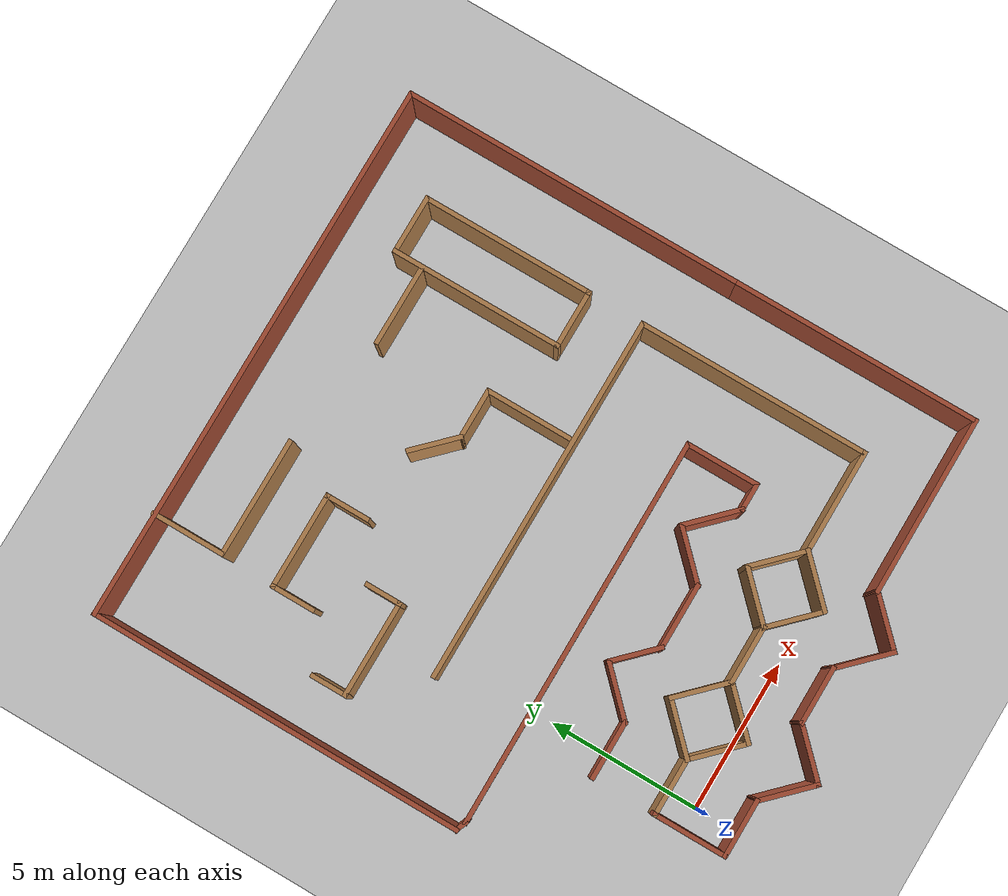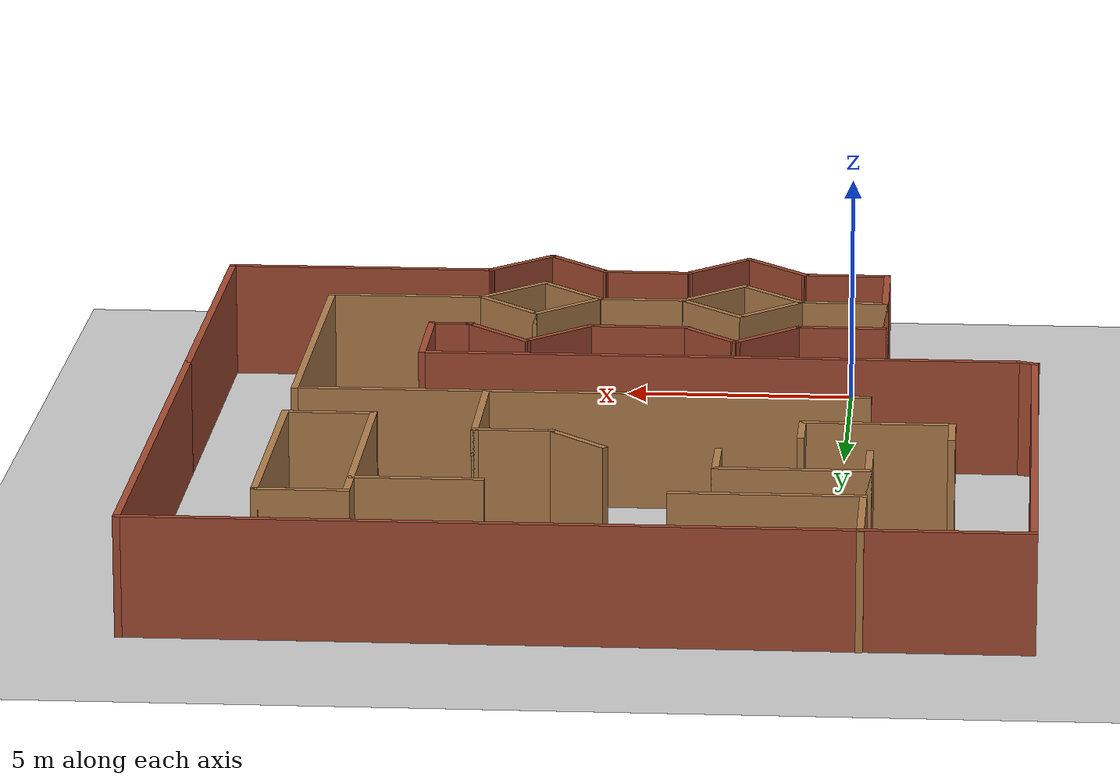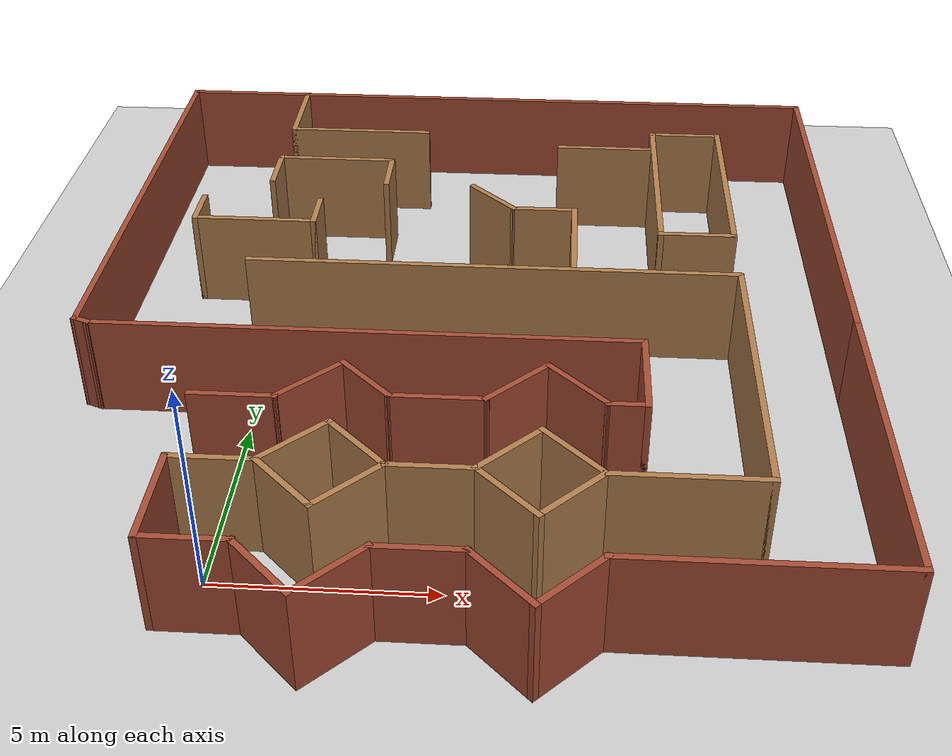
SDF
<sdf version="1.6">
 <world name="default">
  <light name="sun" type="directional">
   <pose>0 0 10 0 -0 0</pose>
   <diffuse>0.8 0.8 0.8 1</diffuse>
   <specular>0.2 0.2 0.2 1</specular>
   <attenuation>
    <range>1000</range>
    <constant>0.9</constant>
    <linear>0.01</linear>
    <quadratic>0.001</quadratic>
   </attenuation>
   <direction>-0.5 0.1 -0.9</direction>
  </light>
  <model name="ground_plane">
   <static>1</static>
   <link name="link">
    <collision name="collision">
     <geometry><plane><normal>0 0 1</normal><size>100 100</size></plane></geometry>
     <surface>
      <contact><collide_bitmask>65535</collide_bitmask></contact>
      <friction><ode><mu>100</mu><mu2>50</mu2></ode></friction>
     </surface>
    </collision>
    <visual name="visual">
     <cast_shadows>0</cast_shadows>
     <geometry><plane><normal>0 0 1</normal><size>100 100</size></plane></geometry>
     <material>
      <script><uri>file://media/materials/scripts/gazebo.material</uri><name>Gazebo/Grey</name></script>
     </material>
    </visual>
   </link>
  </model>
  <gravity>0 0 -9.8</gravity>
  <magnetic_field>6e-06 2.3e-05 -4.2e-05</magnetic_field>
  <atmosphere type="adiabatic"/>
  <physics name="default_physics" default="0" type="ode">
   <max_step_size>0.001</max_step_size>
   <real_time_factor>1</real_time_factor>
   <real_time_update_rate>1000</real_time_update_rate>
  </physics>
  <scene><ambient>0.4 0.4 0.4 1</ambient><background>0.7 0.7 0.7 1</background><shadows>1</shadows></scene>
  <audio><device>default</device></audio>
  <spherical_coordinates>
   <surface_model>EARTH_WGS84</surface_model>
   <latitude_deg>0</latitude_deg>
   <longitude_deg>0</longitude_deg>
   <elevation>0</elevation>
   <heading_deg>0</heading_deg>
  </spherical_coordinates>
  <model name="robot_house">
   <pose>4.96244 7.84434 0 0 -0 0</pose>
   <link name="Wall_0">
    <collision name="Wall_0_Collision">
     <geometry><box><size>2 0.15 2.5</size></box></geometry>
     <pose>0 0 1.25 0 -0 0</pose>
    </collision>
    <visual name="Wall_0_Visual">
     <pose>0 0 1.25 0 -0 0</pose>
     <geometry><box><size>2 0.15 2.5</size></box></geometry>
     <material>
      <script><uri>file://media/materials/scripts/gazebo.material</uri><name>Gazebo/Wood</name></script>
      <ambient>1 1 1 1</ambient>
     </material>
     <meta><layer>0</layer></meta>
    </visual>
    <pose>-4.79669 -6.72519 0 0 -0 0</pose>
   </link>
   <link name="Wall_1">
    <collision name="Wall_1_Collision">
     <geometry><box><size>2 0.15 2.5</size></box></geometry>
     <pose>0 0 1.25 0 -0 0</pose>
    </collision>
    <visual name="Wall_1_Visual">
     <pose>0 0 1.25 0 -0 0</pose>
     <geometry><box><size>2 0.15 2.5</size></box></geometry>
     <material>
      <script><uri>file://media/materials/scripts/gazebo.material</uri><name>Gazebo/Wood</name></script>
      <ambient>1 1 1 1</ambient>
     </material>
     <meta><layer>0</layer></meta>
    </visual>
    <pose>-3.21762 -6.07112 0 0 -0 0.785398</pose>
   </link>
   <link name="Wall_11">
    <collision name="Wall_11_Collision">
     <geometry><box><size>2 0.15 2.5</size></box></geometry>
     <pose>0 0 1.25 0 -0 0</pose>
    </collision>
    <visual name="Wall_11_Visual">
     <pose>0 0 1.25 0 -0 0</pose>
     <geometry><box><size>2 0.15 2.5</size></box></geometry>
     <material>
      <script><uri>file://media/materials/scripts/gazebo.material</uri><name>Gazebo/Wood</name></script>
      <ambient>1 1 1 1</ambient>
     </material>
     <meta><layer>0</layer></meta>
    </visual>
    <pose>-3.21762 -7.37927 0 0 -0 -0.785398</pose>
   </link>
   <link name="Wall_12">
    <collision name="Wall_12_Collision">
     <geometry><box><size>2 0.15 2.5</size></box></geometry>
     <pose>0 0 1.25 0 -0 0</pose>
    </collision>
    <visual name="Wall_12_Visual">
     <pose>0 0 1.25 0 -0 0</pose>
     <geometry><box><size>2 0.15 2.5</size></box></geometry>
     <material>
      <script><uri>file://media/materials/scripts/gazebo.material</uri><name>Gazebo/Wood</name></script>
      <ambient>1 1 1 1</ambient>
     </material>
     <meta><layer>0</layer></meta>
    </visual>
    <pose>-1.90947 -7.37927 0 0 -0 0.785398</pose>
   </link>
   <link name="Wall_14">
    <collision name="Wall_14_Collision">
     <geometry><box><size>2 0.15 2.5</size></box></geometry>
     <pose>0 0 1.25 0 -0 0</pose>
    </collision>
    <visual name="Wall_14_Visual">
     <pose>0 0 1.25 0 -0 0</pose>
     <geometry><box><size>2 0.15 2.5</size></box></geometry>
     <material>
      <script><uri>file://media/materials/scripts/gazebo.material</uri><name>Gazebo/Wood</name></script>
      <ambient>1 1 1 1</ambient>
     </material>
     <meta><layer>0</layer></meta>
    </visual>
    <pose>-0.330397 -6.72519 0 0 -0 0</pose>
   </link>
   <link name="Wall_15">
    <collision name="Wall_15_Collision">
     <geometry><box><size>2 0.15 2.5</size></box></geometry>
     <pose>0 0 1.25 0 -0 0</pose>
    </collision>
    <visual name="Wall_15_Visual">
     <pose>0 0 1.25 0 -0 0</pose>
     <geometry><box><size>2 0.15 2.5</size></box></geometry>
     <material>
      <script><uri>file://media/materials/scripts/gazebo.material</uri><name>Gazebo/Wood</name></script>
      <ambient>1 1 1 1</ambient>
     </material>
     <meta><layer>0</layer></meta>
    </visual>
    <pose>1.24868 -7.37927 0 0 -0 -0.785398</pose>
   </link>
   <link name="Wall_16">
    <collision name="Wall_16_Collision">
     <geometry><box><size>2 0.15 2.5</size></box></geometry>
     <pose>0 0 1.25 0 -0 0</pose>
    </collision>
    <visual name="Wall_16_Visual">
     <pose>0 0 1.25 0 -0 0</pose>
     <geometry><box><size>2 0.15 2.5</size></box></geometry>
     <material>
      <script><uri>file://media/materials/scripts/gazebo.material</uri><name>Gazebo/Wood</name></script>
      <ambient>1 1 1 1</ambient>
     </material>
     <meta><layer>0</layer></meta>
    </visual>
    <pose>2.55682 -7.37927 0 0 -0 0.785398</pose>
   </link>
   <link name="Wall_17">
    <collision name="Wall_17_Collision">
     <geometry><box><size>2 0.15 2.5</size></box></geometry>
     <pose>0 0 1.25 0 -0 0</pose>
    </collision>
    <visual name="Wall_17_Visual">
     <pose>0 0 1.25 0 -0 0</pose>
     <geometry><box><size>2 0.15 2.5</size></box></geometry>
     <material>
      <script><uri>file://media/materials/scripts/gazebo.material</uri><name>Gazebo/Wood</name></script>
      <ambient>1 1 1 1</ambient>
     </material>
     <meta><layer>0</layer></meta>
    </visual>
    <pose>2.55682 -6.07112 0 0 -0 2.35619</pose>
   </link>
   <link name="Wall_18">
    <collision name="Wall_18_Collision">
     <geometry><box><size>2 0.15 2.5</size></box></geometry>
     <pose>0 0 1.25 0 -0 0</pose>
    </collision>
    <visual name="Wall_18_Visual">
     <pose>0 0 1.25 0 -0 0</pose>
     <geometry><box><size>2 0.15 2.5</size></box></geometry>
     <material>
      <script><uri>file://media/materials/scripts/gazebo.material</uri><name>Gazebo/Wood</name></script>
      <ambient>1 1 1 1</ambient>
     </material>
     <meta><layer>0</layer></meta>
    </visual>
    <pose>1.24868 -6.07112 0 0 -0 -2.35619</pose>
   </link>
   <link name="Wall_2">
    <collision name="Wall_2_Collision">
     <geometry><box><size>2 0.15 2.5</size></box></geometry>
     <pose>0 0 1.25 0 -0 0</pose>
    </collision>
    <visual name="Wall_2_Visual">
     <pose>0 0 1.25 0 -0 0</pose>
     <geometry><box><size>2 0.15 2.5</size></box></geometry>
     <material>
      <script><uri>file://media/materials/scripts/gazebo.material</uri><name>Gazebo/Wood</name></script>
      <ambient>1 1 1 1</ambient>
     </material>
     <meta><layer>0</layer></meta>
    </visual>
    <pose>-1.90947 -6.07112 0 0 -0 -0.785398</pose>
   </link>
   <link name="Wall_20">
    <collision name="Wall_20_Collision">
     <geometry><box><size>2 0.15 2.5</size></box></geometry>
     <pose>0 0 1.25 0 -0 0</pose>
    </collision>
    <visual name="Wall_20_Visual">
     <pose>0 0 1.25 0 -0 0</pose>
     <geometry><box><size>2 0.15 2.5</size></box></geometry>
     <material>
      <script><uri>file://media/materials/scripts/gazebo.material</uri><name>Gazebo/Bricks</name></script>
      <ambient>1 1 1 1</ambient>
     </material>
     <meta><layer>0</layer></meta>
    </visual>
    <pose>-0.330397 -9.07519 0 0 -0 0</pose>
   </link>
   <link name="Wall_21">
    <collision name="Wall_21_Collision">
     <geometry><box><size>2 0.15 2.5</size></box></geometry>
     <pose>0 0 1.25 0 -0 0</pose>
    </collision>
    <visual name="Wall_21_Visual">
     <pose>0 0 1.25 0 -0 0</pose>
     <geometry><box><size>2 0.15 2.5</size></box></geometry>
     <material>
      <script><uri>file://media/materials/scripts/gazebo.material</uri><name>Gazebo/Bricks</name></script>
      <ambient>1 1 1 1</ambient>
     </material>
     <meta><layer>0</layer></meta>
    </visual>
    <pose>1.24868 -9.72927 0 0 -0 -0.785398</pose>
   </link>
   <link name="Wall_22">
    <collision name="Wall_22_Collision">
     <geometry><box><size>2 0.15 2.5</size></box></geometry>
     <pose>0 0 1.25 0 -0 0</pose>
    </collision>
    <visual name="Wall_22_Visual">
     <pose>0 0 1.25 0 -0 0</pose>
     <geometry><box><size>2 0.15 2.5</size></box></geometry>
     <material>
      <script><uri>file://media/materials/scripts/gazebo.material</uri><name>Gazebo/Bricks</name></script>
      <ambient>1 1 1 1</ambient>
     </material>
     <meta><layer>0</layer></meta>
    </visual>
    <pose>2.55682 -9.72927 0 0 -0 0.785398</pose>
   </link>
   <link name="Wall_25">
    <collision name="Wall_25_Collision">
     <geometry><box><size>2 0.15 2.5</size></box></geometry>
     <pose>0 0 1.25 0 -0 0</pose>
    </collision>
    <visual name="Wall_25_Visual">
     <pose>0 0 1.25 0 -0 0</pose>
     <geometry><box><size>2 0.15 2.5</size></box></geometry>
     <material>
      <script><uri>file://media/materials/scripts/gazebo.material</uri><name>Gazebo/Bricks</name></script>
      <ambient>1 1 1 1</ambient>
     </material>
     <meta><layer>0</layer></meta>
    </visual>
    <pose>-4.79669 -4.62519 0 0 -0 0</pose>
   </link>
   <link name="Wall_26">
    <collision name="Wall_26_Collision">
     <geometry><box><size>2 0.15 2.5</size></box></geometry>
     <pose>0 0 1.25 0 -0 0</pose>
    </collision>
    <visual name="Wall_26_Visual">
     <pose>0 0 1.25 0 -0 0</pose>
     <geometry><box><size>2 0.15 2.5</size></box></geometry>
     <material>
      <script><uri>file://media/materials/scripts/gazebo.material</uri><name>Gazebo/Bricks</name></script>
      <ambient>1 1 1 1</ambient>
     </material>
     <meta><layer>0</layer></meta>
    </visual>
    <pose>-3.21762 -3.97112 0 0 -0 0.785398</pose>
   </link>
   <link name="Wall_27">
    <collision name="Wall_27_Collision">
     <geometry><box><size>1.75 0.15 2.5</size></box></geometry>
     <pose>0 0 1.25 0 -0 0</pose>
    </collision>
    <visual name="Wall_27_Visual">
     <pose>0 0 1.25 0 -0 0</pose>
     <geometry><box><size>1.75 0.15 2.5</size></box></geometry>
     <material>
      <script><uri>file://media/materials/scripts/gazebo.material</uri><name>Gazebo/Bricks</name></script>
      <ambient>1 1 1 1</ambient>
     </material>
     <meta><layer>0</layer></meta>
    </visual>
    <pose>-1.99786 -3.88273 0 0 -0 -0.785398</pose>
   </link>
   <link name="Wall_28">
    <collision name="Wall_28_Collision">
     <geometry><box><size>2.25 0.15 2.5</size></box></geometry>
     <pose>0 0 1.25 0 -0 0</pose>
    </collision>
    <visual name="Wall_28_Visual">
     <pose>0 0 1.25 0 -0 0</pose>
     <geometry><box><size>2.25 0.15 2.5</size></box></geometry>
     <material>
      <script><uri>file://media/materials/scripts/gazebo.material</uri><name>Gazebo/Bricks</name></script>
      <ambient>1 1 1 1</ambient>
     </material>
     <meta><layer>0</layer></meta>
    </visual>
    <pose>-0.382174 -4.44842 0 0 -0 0</pose>
   </link>
   <link name="Wall_29">
    <collision name="Wall_29_Collision">
     <geometry><box><size>2 0.15 2.5</size></box></geometry>
     <pose>0 0 1.25 0 -0 0</pose>
    </collision>
    <visual name="Wall_29_Visual">
     <pose>0 0 1.25 0 -0 0</pose>
     <geometry><box><size>2 0.15 2.5</size></box></geometry>
     <material>
      <script><uri>file://media/materials/scripts/gazebo.material</uri><name>Gazebo/Bricks</name></script>
      <ambient>1 1 1 1</ambient>
     </material>
     <meta><layer>0</layer></meta>
    </visual>
    <pose>1.3219 -3.79434 0 0 -0 0.785398</pose>
   </link>
   <link name="Wall_30">
    <collision name="Wall_30_Collision">
     <geometry><box><size>2 0.15 2.5</size></box></geometry>
     <pose>0 0 1.25 0 -0 0</pose>
    </collision>
    <visual name="Wall_30_Visual">
     <pose>0 0 1.25 0 -0 0</pose>
     <geometry><box><size>2 0.15 2.5</size></box></geometry>
     <material>
      <script><uri>file://media/materials/scripts/gazebo.material</uri><name>Gazebo/Bricks</name></script>
      <ambient>1 1 1 1</ambient>
     </material>
     <meta><layer>0</layer></meta>
    </visual>
    <pose>2.63005 -3.79434 0 0 -0 -0.785398</pose>
   </link>
   <link name="Wall_31">
    <collision name="Wall_31_Collision">
     <geometry><box><size>1 0.15 2.5</size></box></geometry>
     <pose>0 0 1.25 0 -0 0</pose>
    </collision>
    <visual name="Wall_31_Visual">
     <pose>0 0 1.25 0 -0 0</pose>
     <geometry><box><size>1 0.15 2.5</size></box></geometry>
     <material>
      <script><uri>file://media/materials/scripts/gazebo.material</uri><name>Gazebo/Bricks</name></script>
      <ambient>1 1 1 1</ambient>
     </material>
     <meta><layer>0</layer></meta>
    </visual>
    <pose>3.70912 -4.44842 0 0 -0 0</pose>
   </link>
   <link name="Wall_32">
    <collision name="Wall_32_Collision">
     <geometry><box><size>2.5 0.15 2.5</size></box></geometry>
     <pose>0 0 1.25 0 -0 0</pose>
    </collision>
    <visual name="Wall_32_Visual">
     <pose>0 0 1.25 0 -0 0</pose>
     <geometry><box><size>2.5 0.15 2.5</size></box></geometry>
     <material>
      <script><uri>file://media/materials/scripts/gazebo.material</uri><name>Gazebo/Bricks</name></script>
      <ambient>1 1 1 1</ambient>
     </material>
     <meta><layer>0</layer></meta>
    </visual>
    <pose>4.13412 -3.27342 0 0 -0 1.5708</pose>
   </link>
   <link name="Wall_37">
    <collision name="Wall_37_Collision">
     <geometry><box><size>3.5 0.15 2.5</size></box></geometry>
     <pose>0 0 1.25 0 -0 0</pose>
    </collision>
    <visual name="Wall_37_Visual">
     <pose>0 0 1.25 0 -0 0</pose>
     <geometry><box><size>3.5 0.15 2.5</size></box></geometry>
     <material>
      <script><uri>file://media/materials/scripts/gazebo.material</uri><name>Gazebo/Wood</name></script>
      <ambient>1 1 1 1</ambient>
     </material>
     <meta><layer>0</layer></meta>
    </visual>
    <pose>4.8859 -6.72519 0 0 -0 0</pose>
   </link>
   <link name="Wall_39">
    <collision name="Wall_39_Collision">
     <geometry><box><size>6 0.15 2.5</size></box></geometry>
     <pose>0 0 1.25 0 -0 0</pose>
    </collision>
    <visual name="Wall_39_Visual">
     <pose>0 0 1.25 0 -0 0</pose>
     <geometry><box><size>6 0.15 2.5</size></box></geometry>
     <material>
      <script><uri>file://media/materials/scripts/gazebo.material</uri><name>Gazebo/Bricks</name></script>
      <ambient>1 1 1 1</ambient>
     </material>
     <meta><layer>0</layer></meta>
    </visual>
    <pose>6.1359 -9.07519 0 0 -0 0</pose>
   </link>
   <link name="Wall_40">
    <collision name="Wall_40_Collision">
     <geometry><box><size>8.25 0.15 2.5</size></box></geometry>
     <pose>0 0 1.25 0 -0 0</pose>
    </collision>
    <visual name="Wall_40_Visual">
     <pose>0 0 1.25 0 -0 0</pose>
     <geometry><box><size>8.25 0.15 2.5</size></box></geometry>
     <material>
      <script><uri>file://media/materials/scripts/gazebo.material</uri><name>Gazebo/Bricks</name></script>
      <ambient>1 1 1 1</ambient>
     </material>
     <meta><layer>0</layer></meta>
    </visual>
    <pose>9.0609 -5.02519 0 0 -0 1.5708</pose>
   </link>
   <link name="Wall_43">
    <collision name="Wall_43_Collision">
     <geometry><box><size>13 0.15 2.5</size></box></geometry>
     <pose>0 0 1.25 0 -0 0</pose>
    </collision>
    <visual name="Wall_43_Visual">
     <pose>0 0 1.25 0 -0 0</pose>
     <geometry><box><size>13 0.15 2.5</size></box></geometry>
     <material>
      <script><uri>file://media/materials/scripts/gazebo.material</uri><name>Gazebo/Bricks</name></script>
      <ambient>1 1 1 1</ambient>
     </material>
     <meta><layer>0</layer></meta>
    </visual>
    <pose>-2.29088 -2.09842 0 0 -0 3.14159</pose>
   </link>
   <link name="Wall_47">
    <collision name="Wall_47_Collision">
     <geometry><box><size>7.75 0.15 2.5</size></box></geometry>
     <pose>0 0 1.25 0 -0 0</pose>
    </collision>
    <visual name="Wall_47_Visual">
     <pose>0 0 1.25 0 -0 0</pose>
     <geometry><box><size>7.75 0.15 2.5</size></box></geometry>
     <material>
      <script><uri>file://media/materials/scripts/gazebo.material</uri><name>Gazebo/Wood</name></script>
      <ambient>1 1 1 1</ambient>
     </material>
     <meta><layer>0</layer></meta>
    </visual>
    <pose>6.5609 -2.92519 0 0 -0 1.5708</pose>
   </link>
   <link name="Wall_48">
    <collision name="Wall_48_Collision">
     <geometry><box><size>12.25 0.15 2.5</size></box></geometry>
     <pose>0 0 1.25 0 -0 0</pose>
    </collision>
    <visual name="Wall_48_Visual">
     <pose>0 0 1.25 0 -0 0</pose>
     <geometry><box><size>12.25 0.15 2.5</size></box></geometry>
     <material>
      <script><uri>file://media/materials/scripts/gazebo.material</uri><name>Gazebo/Wood</name></script>
      <ambient>1 1 1 1</ambient>
     </material>
     <meta><layer>0</layer></meta>
    </visual>
    <pose>0.510898 0.874807 0 0 -0 3.14159</pose>
   </link>
   <link name="Wall_5">
    <collision name="Wall_5_Collision">
     <geometry><box><size>2.5 0.15 2.5</size></box></geometry>
     <pose>0 0 1.25 0 -0 0</pose>
    </collision>
    <visual name="Wall_5_Visual">
     <pose>0 0 1.25 0 -0 0</pose>
     <geometry><box><size>2.5 0.15 2.5</size></box></geometry>
     <material>
      <script><uri>file://media/materials/scripts/gazebo.material</uri><name>Gazebo/Bricks</name></script>
      <ambient>1 1 1 1</ambient>
     </material>
     <meta><layer>0</layer></meta>
    </visual>
    <pose>-5.72169 -7.90019 0 0 -0 -1.5708</pose>
   </link>
   <link name="Wall_50">
    <collision name="Wall_50_Collision">
     <geometry><box><size>11.5 0.15 2.5</size></box></geometry>
     <pose>0 0 1.25 0 -0 0</pose>
    </collision>
    <visual name="Wall_50_Visual">
     <pose>0 0 1.25 0 -0 0</pose>
     <geometry><box><size>11.5 0.15 2.5</size></box></geometry>
     <material>
      <script><uri>file://media/materials/scripts/gazebo.material</uri><name>Gazebo/Bricks</name></script>
      <ambient>1 1 1 1</ambient>
     </material>
     <meta><layer>0</layer></meta>
    </visual>
    <pose>9.0609 4.69981 0 0 -0 1.5708</pose>
   </link>
   <link name="Wall_51">
    <collision name="Wall_51_Collision">
     <geometry><box><size>18.25 0.15 2.5</size></box></geometry>
     <pose>0 0 1.25 0 -0 0</pose>
    </collision>
    <visual name="Wall_51_Visual">
     <pose>0 0 1.25 0 -0 0</pose>
     <geometry><box><size>18.25 0.15 2.5</size></box></geometry>
     <material>
      <script><uri>file://media/materials/scripts/gazebo.material</uri><name>Gazebo/Bricks</name></script>
      <ambient>1 1 1 1</ambient>
     </material>
     <meta><layer>0</layer></meta>
    </visual>
    <pose>0.010898 10.3748 0 0 -0 3.14159</pose>
   </link>
   <link name="Wall_52">
    <collision name="Wall_52_Collision">
     <geometry><box><size>12.5 0.15 2.5</size></box></geometry>
     <pose>0 0 1.25 0 -0 0</pose>
    </collision>
    <visual name="Wall_52_Visual">
     <pose>0 0 1.25 0 -0 0</pose>
     <geometry><box><size>12.5 0.15 2.5</size></box></geometry>
     <material>
      <script><uri>file://media/materials/scripts/gazebo.material</uri><name>Gazebo/Bricks</name></script>
      <ambient>1 1 1 1</ambient>
     </material>
     <meta><layer>0</layer></meta>
    </visual>
    <pose>-9.0391 4.19981 0 0 -0 -1.5708</pose>
   </link>
   <link name="Wall_54">
    <collision name="Wall_54_Collision">
     <geometry><box><size>0.495915 0.15 2.5</size></box></geometry>
     <pose>0 0 1.25 0 -0 0</pose>
    </collision>
    <visual name="Wall_54_Visual">
     <pose>0 0 1.25 0 -0 0</pose>
     <geometry><box><size>0.495915 0.15 2.5</size></box></geometry>
     <material>
      <script><uri>file://media/materials/scripts/gazebo.material</uri><name>Gazebo/Bricks</name></script>
      <ambient>1 1 1 1</ambient>
     </material>
     <meta><layer>0</layer></meta>
    </visual>
    <pose>-8.87749 -2.03681 0 0 -0 2.77737</pose>
   </link>
   <link name="Wall_58">
    <collision name="Wall_58_Collision">
     <geometry><box><size>2 0.15 2.5</size></box></geometry>
     <pose>0 0 1.25 0 -0 0</pose>
    </collision>
    <visual name="Wall_58_Visual">
     <pose>0 0 1.25 0 -0 0</pose>
     <geometry><box><size>2 0.15 2.5</size></box></geometry>
     <material>
      <script><uri>file://media/materials/scripts/gazebo.material</uri><name>Gazebo/Wood</name></script>
      <ambient>1 1 1 1</ambient>
     </material>
     <meta><layer>0</layer></meta>
    </visual>
    <pose>5.6359 2.72481 0 0 -0 3.14159</pose>
   </link>
   <link name="Wall_6">
    <collision name="Wall_6_Collision">
     <geometry><box><size>2 0.15 2.5</size></box></geometry>
     <pose>0 0 1.25 0 -0 0</pose>
    </collision>
    <visual name="Wall_6_Visual">
     <pose>0 0 1.25 0 -0 0</pose>
     <geometry><box><size>2 0.15 2.5</size></box></geometry>
     <material>
      <script><uri>file://media/materials/scripts/gazebo.material</uri><name>Gazebo/Bricks</name></script>
      <ambient>1 1 1 1</ambient>
     </material>
     <meta><layer>0</layer></meta>
    </visual>
    <pose>-4.79669 -9.07519 0 0 -0 0</pose>
   </link>
   <link name="Wall_60">
    <collision name="Wall_60_Collision">
     <geometry><box><size>5.75 0.15 2.5</size></box></geometry>
     <pose>0 0 1.25 0 -0 0</pose>
    </collision>
    <visual name="Wall_60_Visual">
     <pose>0 0 1.25 0 -0 0</pose>
     <geometry><box><size>5.75 0.15 2.5</size></box></geometry>
     <material>
      <script><uri>file://media/materials/scripts/gazebo.material</uri><name>Gazebo/Wood</name></script>
      <ambient>1 1 1 1</ambient>
     </material>
     <meta><layer>0</layer></meta>
    </visual>
    <pose>6.5609 5.52481 0 0 -0 1.5708</pose>
   </link>
   <link name="Wall_62">
    <collision name="Wall_62_Collision">
     <geometry><box><size>5.75 0.15 2.5</size></box></geometry>
     <pose>0 0 1.25 0 -0 0</pose>
    </collision>
    <visual name="Wall_62_Visual">
     <pose>0 0 1.25 0 -0 0</pose>
     <geometry><box><size>5.75 0.15 2.5</size></box></geometry>
     <material>
      <script><uri>file://media/materials/scripts/gazebo.material</uri><name>Gazebo/Wood</name></script>
      <ambient>1 1 1 1</ambient>
     </material>
     <meta><layer>0</layer></meta>
    </visual>
    <pose>4.7109 5.52481 0 0 -0 1.5708</pose>
   </link>
   <link name="Wall_63">
    <collision name="Wall_63_Collision">
     <geometry><box><size>2 0.15 2.5</size></box></geometry>
     <pose>0 0 1.25 0 -0 0</pose>
    </collision>
    <visual name="Wall_63_Visual">
     <pose>0 0 1.25 0 -0 0</pose>
     <geometry><box><size>2 0.15 2.5</size></box></geometry>
     <material>
      <script><uri>file://media/materials/scripts/gazebo.material</uri><name>Gazebo/Wood</name></script>
      <ambient>1 1 1 1</ambient>
     </material>
     <meta><layer>0</layer></meta>
    </visual>
    <pose>5.6359 8.32481 0 0 -0 0</pose>
   </link>
   <link name="Wall_65">
    <collision name="Wall_65_Collision">
     <geometry><box><size>2.75 0.15 2.5</size></box></geometry>
     <pose>0 0 1.25 0 -0 0</pose>
    </collision>
    <visual name="Wall_65_Visual">
     <pose>0 0 1.25 0 -0 0</pose>
     <geometry><box><size>2.75 0.15 2.5</size></box></geometry>
     <material>
      <script><uri>file://media/materials/scripts/gazebo.material</uri><name>Gazebo/Wood</name></script>
      <ambient>1 1 1 1</ambient>
     </material>
     <meta><layer>0</layer></meta>
    </visual>
    <pose>3.38745 7.38198 0 0 -0 3.14159</pose>
   </link>
   <link name="Wall_68">
    <collision name="Wall_68_Collision">
     <geometry><box><size>3 0.15 2.5</size></box></geometry>
     <pose>0 0 1.25 0 -0 0</pose>
    </collision>
    <visual name="Wall_68_Visual">
     <pose>0 0 1.25 0 -0 0</pose>
     <geometry><box><size>3 0.15 2.5</size></box></geometry>
     <material>
      <script><uri>file://media/materials/scripts/gazebo.material</uri><name>Gazebo/Wood</name></script>
      <ambient>1 1 1 1</ambient>
     </material>
     <meta><layer>0</layer></meta>
    </visual>
    <pose>2.50623 2.36974 0 0 -0 1.5708</pose>
   </link>
   <link name="Wall_69">
    <collision name="Wall_69_Collision">
     <geometry><box><size>1.75 0.15 2.5</size></box></geometry>
     <pose>0 0 1.25 0 -0 0</pose>
    </collision>
    <visual name="Wall_69_Visual">
     <pose>0 0 1.25 0 -0 0</pose>
     <geometry><box><size>1.75 0.15 2.5</size></box></geometry>
     <material>
      <script><uri>file://media/materials/scripts/gazebo.material</uri><name>Gazebo/Wood</name></script>
      <ambient>1 1 1 1</ambient>
     </material>
     <meta><layer>0</layer></meta>
    </visual>
    <pose>1.70623 3.79474 0 0 -0 3.14159</pose>
   </link>
   <link name="Wall_70">
    <collision name="Wall_70_Collision">
     <geometry><box><size>1.75 0.15 2.5</size></box></geometry>
     <pose>0 0 1.25 0 -0 0</pose>
    </collision>
    <visual name="Wall_70_Visual">
     <pose>0 0 1.25 0 -0 0</pose>
     <geometry><box><size>1.75 0.15 2.5</size></box></geometry>
     <material>
      <script><uri>file://media/materials/scripts/gazebo.material</uri><name>Gazebo/Wood</name></script>
      <ambient>1 1 1 1</ambient>
     </material>
     <meta><layer>0</layer></meta>
    </visual>
    <pose>0.340546 4.36042 0 0 -0 2.35619</pose>
   </link>
   <link name="Wall_72">
    <collision name="Wall_72_Collision">
     <geometry><box><size>2.5 0.15 2.5</size></box></geometry>
     <pose>0 0 1.25 0 -0 0</pose>
    </collision>
    <visual name="Wall_72_Visual">
     <pose>0 0 1.25 0 -0 0</pose>
     <geometry><box><size>2.5 0.15 2.5</size></box></geometry>
     <material>
      <script><uri>file://media/materials/scripts/gazebo.material</uri><name>Gazebo/Wood</name></script>
      <ambient>1 1 1 1</ambient>
     </material>
     <meta><layer>0</layer></meta>
    </visual>
    <pose>-5.63343 9.23941 0 0 -0 -1.5708</pose>
   </link>
   <link name="Wall_73">
    <collision name="Wall_73_Collision">
     <geometry><box><size>4 0.15 2.5</size></box></geometry>
     <pose>0 0 1.25 0 -0 0</pose>
    </collision>
    <visual name="Wall_73_Visual">
     <pose>0 0 1.25 0 -0 0</pose>
     <geometry><box><size>4 0.15 2.5</size></box></geometry>
     <material>
      <script><uri>file://media/materials/scripts/gazebo.material</uri><name>Gazebo/Wood</name></script>
      <ambient>1 1 1 1</ambient>
     </material>
     <meta><layer>0</layer></meta>
    </visual>
    <pose>-3.70843 8.06441 0 0 -0 0</pose>
   </link>
   <link name="Wall_77">
    <collision name="Wall_77_Collision">
     <geometry><box><size>1.5 0.15 2.5</size></box></geometry>
     <pose>0 0 1.25 0 -0 0</pose>
    </collision>
    <visual name="Wall_77_Visual">
     <pose>0 0 1.25 0 -0 0</pose>
     <geometry><box><size>1.5 0.15 2.5</size></box></geometry>
     <material>
      <script><uri>file://media/materials/scripts/gazebo.material</uri><name>Gazebo/Wood</name></script>
      <ambient>1 1 1 1</ambient>
     </material>
     <meta><layer>0</layer></meta>
    </visual>
    <pose>-5.68663 5.60977 0 0 -0 1.5708</pose>
   </link>
   <link name="Wall_78">
    <collision name="Wall_78_Collision">
     <geometry><box><size>3.25 0.15 2.5</size></box></geometry>
     <pose>0 0 1.25 0 -0 0</pose>
    </collision>
    <visual name="Wall_78_Visual">
     <pose>0 0 1.25 0 -0 0</pose>
     <geometry><box><size>3.25 0.15 2.5</size></box></geometry>
     <material>
      <script><uri>file://media/materials/scripts/gazebo.material</uri><name>Gazebo/Wood</name></script>
      <ambient>1 1 1 1</ambient>
     </material>
     <meta><layer>0</layer></meta>
    </visual>
    <pose>-4.13663 6.28477 0 0 -0 0</pose>
   </link>
   <link name="Wall_79">
    <collision name="Wall_79_Collision">
     <geometry><box><size>1.5 0.15 2.5</size></box></geometry>
     <pose>0 0 1.25 0 -0 0</pose>
    </collision>
    <visual name="Wall_79_Visual">
     <pose>0 0 1.25 0 -0 0</pose>
     <geometry><box><size>1.5 0.15 2.5</size></box></geometry>
     <material>
      <script><uri>file://media/materials/scripts/gazebo.material</uri><name>Gazebo/Wood</name></script>
      <ambient>1 1 1 1</ambient>
     </material>
     <meta><layer>0</layer></meta>
    </visual>
    <pose>-2.58663 5.60977 0 0 -0 -1.5708</pose>
   </link>
   <link name="Wall_8">
    <collision name="Wall_8_Collision">
     <geometry><box><size>2 0.15 2.5</size></box></geometry>
     <pose>0 0 1.25 0 -0 0</pose>
    </collision>
    <visual name="Wall_8_Visual">
     <pose>0 0 1.25 0 -0 0</pose>
     <geometry><box><size>2 0.15 2.5</size></box></geometry>
     <material>
      <script><uri>file://media/materials/scripts/gazebo.material</uri><name>Gazebo/Bricks</name></script>
      <ambient>1 1 1 1</ambient>
     </material>
     <meta><layer>0</layer></meta>
    </visual>
    <pose>-3.21762 -9.72927 0 0 -0 -0.785398</pose>
   </link>
   <link name="Wall_81">
    <collision name="Wall_81_Collision">
     <geometry><box><size>1.25 0.15 2.5</size></box></geometry>
     <pose>0 0 1.25 0 -0 0</pose>
    </collision>
    <visual name="Wall_81_Visual">
     <pose>0 0 1.25 0 -0 0</pose>
     <geometry><box><size>1.25 0.15 2.5</size></box></geometry>
     <material>
      <script><uri>file://media/materials/scripts/gazebo.material</uri><name>Gazebo/Wood</name></script>
      <ambient>1 1 1 1</ambient>
     </material>
     <meta><layer>0</layer></meta>
    </visual>
    <pose>-7.33584 3.37396 0 0 -0 -1.5708</pose>
   </link>
   <link name="Wall_82">
    <collision name="Wall_82_Collision">
     <geometry><box><size>3.25 0.15 2.5</size></box></geometry>
     <pose>0 0 1.25 0 -0 0</pose>
    </collision>
    <visual name="Wall_82_Visual">
     <pose>0 0 1.25 0 -0 0</pose>
     <geometry><box><size>3.25 0.15 2.5</size></box></geometry>
     <material>
      <script><uri>file://media/materials/scripts/gazebo.material</uri><name>Gazebo/Wood</name></script>
      <ambient>1 1 1 1</ambient>
     </material>
     <meta><layer>0</layer></meta>
    </visual>
    <pose>-5.78584 2.82396 0 0 -0 0</pose>
   </link>
   <link name="Wall_83">
    <collision name="Wall_83_Collision">
     <geometry><box><size>1.25 0.15 2.5</size></box></geometry>
     <pose>0 0 1.25 0 -0 0</pose>
    </collision>
    <visual name="Wall_83_Visual">
     <pose>0 0 1.25 0 -0 0</pose>
     <geometry><box><size>1.25 0.15 2.5</size></box></geometry>
     <material>
      <script><uri>file://media/materials/scripts/gazebo.material</uri><name>Gazebo/Wood</name></script>
      <ambient>1 1 1 1</ambient>
     </material>
     <meta><layer>0</layer></meta>
    </visual>
    <pose>-4.23584 3.37396 0 0 -0 1.5708</pose>
   </link>
   <link name="Wall_9">
    <collision name="Wall_9_Collision">
     <geometry><box><size>2 0.15 2.5</size></box></geometry>
     <pose>0 0 1.25 0 -0 0</pose>
    </collision>
    <visual name="Wall_9_Visual">
     <pose>0 0 1.25 0 -0 0</pose>
     <geometry><box><size>2 0.15 2.5</size></box></geometry>
     <material>
      <script><uri>file://media/materials/scripts/gazebo.material</uri><name>Gazebo/Bricks</name></script>
      <ambient>1 1 1 1</ambient>
     </material>
     <meta><layer>0</layer></meta>
    </visual>
    <pose>-1.90947 -9.72927 0 0 -0 0.785398</pose>
   </link>
   <static>1</static>
  </model>
 </world>
</sdf>
